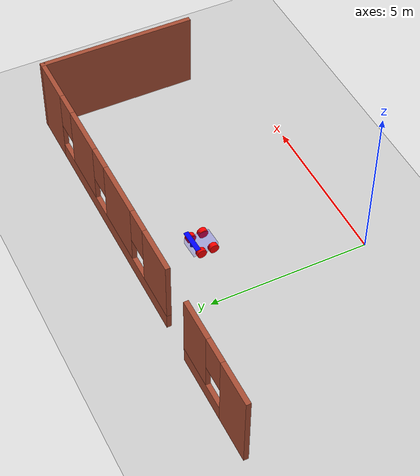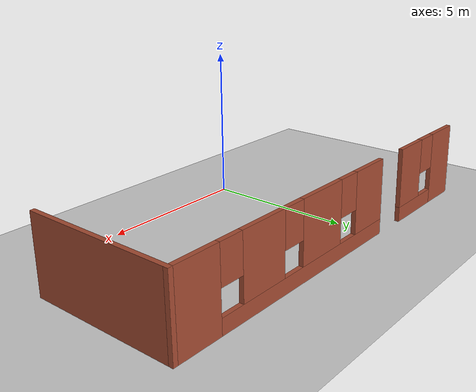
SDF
<sdf version="1.6">
 <world name="default">
  <model name="ground_plane">
   <static>1</static>
   <link name="link">
    <collision name="collision">
     <geometry><plane><normal>0 0 1</normal><size>100 100</size></plane></geometry>
     <surface>
      <contact><collide_bitmask>65535</collide_bitmask></contact>
      <friction><ode><mu>100</mu><mu2>50</mu2></ode></friction>
     </surface>
    </collision>
    <visual name="visual">
     <cast_shadows>0</cast_shadows>
     <geometry><plane><normal>0 0 1</normal><size>100 100</size></plane></geometry>
     <material>
      <script><uri>file://media/materials/scripts/gazebo.material</uri><name>Gazebo/Grey</name></script>
     </material>
    </visual>
   </link>
  </model>
  <model name="apartment">
   <link name="Wall_15">
    <pose>8.56082 4.33059 0 0 -0 1.5708</pose>
    <visual name="Wall_15_Visual">
     <pose>0 0 1.25 0 -0 0</pose>
     <geometry><box><size>5 0.15 2.5</size></box></geometry>
     <material>
      <script><uri>file://media/materials/scripts/gazebo.material</uri><name>Gazebo/Bricks</name></script>
      <ambient>1 1 1 1</ambient>
     </material>
     <meta><layer>0</layer></meta>
    </visual>
    <collision name="Wall_15_Collision">
     <pose>0 0 1.25 0 -0 0</pose>
     <geometry><box><size>5 0.15 2.5</size></box></geometry>
     <surface>
      <friction>
       <ode><mu>1</mu><mu2>1</mu2><fdir1>0 0 0</fdir1><slip1>0</slip1><slip2>0</slip2></ode>
       <torsional>
        <coefficient>1</coefficient>
        <patch_radius>0</patch_radius>
        <surface_radius>0</surface_radius>
        <use_patch_radius>1</use_patch_radius>
        <ode><slip>0</slip></ode>
       </torsional>
      </friction>
      <bounce><restitution_coefficient>0</restitution_coefficient><threshold>1e+06</threshold></bounce>
      <contact>
       <collide_without_contact>0</collide_without_contact>
       <collide_without_contact_bitmask>1</collide_without_contact_bitmask>
       <collide_bitmask>1</collide_bitmask>
       <ode>
        <soft_cfm>0</soft_cfm>
        <soft_erp>0.2</soft_erp>
        <kp>1e+13</kp>
        <kd>1</kd>
        <max_vel>0.01</max_vel>
        <min_depth>0</min_depth>
       </ode>
       <bullet>
        <split_impulse>1</split_impulse>
        <split_impulse_penetration_threshold>-0.01</split_impulse_penetration_threshold>
        <soft_cfm>0</soft_cfm>
        <soft_erp>0.2</soft_erp>
        <kp>1e+13</kp>
        <kd>1</kd>
       </bullet>
      </contact>
     </surface>
    </collision>
   </link>
   <link name="Wall_16">
    <pose>4.13582 6.75558 0 0 -0 3.14159</pose>
    <visual name="Wall_16_Visual_1">
     <pose>0.807869 0 0.25 0 -0 0</pose>
     <geometry><box><size>7.38426 0.15 0.5</size></box></geometry>
     <material>
      <script><uri>file://media/materials/scripts/gazebo.material</uri><name>Gazebo/Bricks</name></script>
      <ambient>1 1 1 1</ambient>
     </material>
     <meta><layer>0</layer></meta>
    </visual>
    <visual name="Wall_16_Visual_0">
     <pose>-3.69213 0 1.25 0 -0 0</pose>
     <geometry><box><size>1.61574 0.15 2.5</size></box></geometry>
     <material>
      <script><uri>file://media/materials/scripts/gazebo.material</uri><name>Gazebo/Bricks</name></script>
      <ambient>1 1 1 1</ambient>
     </material>
     <meta><layer>0</layer></meta>
    </visual>
    <visual name="Wall_16_Visual_2">
     <pose>-1.25235 0 1.5 0 -0 0</pose>
     <geometry><box><size>1.66382 0.15 2</size></box></geometry>
     <material>
      <script><uri>file://media/materials/scripts/gazebo.material</uri><name>Gazebo/Bricks</name></script>
      <ambient>1 1 1 1</ambient>
     </material>
     <meta><layer>0</layer></meta>
    </visual>
    <visual name="Wall_16_Visual_3">
     <pose>1.29511 0 1.5 0 -0 0</pose>
     <geometry><box><size>1.83111 0.15 2</size></box></geometry>
     <material>
      <script><uri>file://media/materials/scripts/gazebo.material</uri><name>Gazebo/Bricks</name></script>
      <ambient>1 1 1 1</ambient>
     </material>
     <meta><layer>0</layer></meta>
    </visual>
    <visual name="Wall_16_Visual_4">
     <pose>3.75534 0 1.5 0 -0 0</pose>
     <geometry><box><size>1.48933 0.15 2</size></box></geometry>
     <material>
      <script><uri>file://media/materials/scripts/gazebo.material</uri><name>Gazebo/Bricks</name></script>
      <ambient>1 1 1 1</ambient>
     </material>
     <meta><layer>0</layer></meta>
    </visual>
    <visual name="Wall_16_Visual_5">
     <pose>-2.48426 0 1.9 0 -0 0</pose>
     <geometry><box><size>0.8 0.15 1.2</size></box></geometry>
     <material>
      <script><uri>file://media/materials/scripts/gazebo.material</uri><name>Gazebo/Bricks</name></script>
      <ambient>1 1 1 1</ambient>
     </material>
     <meta><layer>0</layer></meta>
    </visual>
    <visual name="Wall_16_Visual_6">
     <pose>-0.020444 0 1.9 0 -0 0</pose>
     <geometry><box><size>0.8 0.15 1.2</size></box></geometry>
     <material>
      <script><uri>file://media/materials/scripts/gazebo.material</uri><name>Gazebo/Bricks</name></script>
      <ambient>1 1 1 1</ambient>
     </material>
     <meta><layer>0</layer></meta>
    </visual>
    <visual name="Wall_16_Visual_7">
     <pose>2.61067 0 1.9 0 -0 0</pose>
     <geometry><box><size>0.8 0.15 1.2</size></box></geometry>
     <material>
      <script><uri>file://media/materials/scripts/gazebo.material</uri><name>Gazebo/Bricks</name></script>
      <ambient>1 1 1 1</ambient>
     </material>
     <meta><layer>0</layer></meta>
    </visual>
    <collision name="Wall_16_Collision_0">
     <pose>-3.69213 0 1.25 0 -0 0</pose>
     <geometry><box><size>1.61574 0.15 2.5</size></box></geometry>
     <surface>
      <friction>
       <ode><mu>1</mu><mu2>1</mu2><fdir1>0 0 0</fdir1><slip1>0</slip1><slip2>0</slip2></ode>
       <torsional>
        <coefficient>1</coefficient>
        <patch_radius>0</patch_radius>
        <surface_radius>0</surface_radius>
        <use_patch_radius>1</use_patch_radius>
        <ode><slip>0</slip></ode>
       </torsional>
      </friction>
      <bounce><restitution_coefficient>0</restitution_coefficient><threshold>1e+06</threshold></bounce>
      <contact>
       <collide_without_contact>0</collide_without_contact>
       <collide_without_contact_bitmask>1</collide_without_contact_bitmask>
       <collide_bitmask>1</collide_bitmask>
       <ode>
        <soft_cfm>0</soft_cfm>
        <soft_erp>0.2</soft_erp>
        <kp>1e+13</kp>
        <kd>1</kd>
        <max_vel>0.01</max_vel>
        <min_depth>0</min_depth>
       </ode>
       <bullet>
        <split_impulse>1</split_impulse>
        <split_impulse_penetration_threshold>-0.01</split_impulse_penetration_threshold>
        <soft_cfm>0</soft_cfm>
        <soft_erp>0.2</soft_erp>
        <kp>1e+13</kp>
        <kd>1</kd>
       </bullet>
      </contact>
     </surface>
    </collision>
    <collision name="Wall_16_Collision_1">
     <pose>0.807869 0 0.25 0 -0 0</pose>
     <geometry><box><size>7.38426 0.15 0.5</size></box></geometry>
     <surface>
      <friction>
       <ode><mu>1</mu><mu2>1</mu2><fdir1>0 0 0</fdir1><slip1>0</slip1><slip2>0</slip2></ode>
       <torsional>
        <coefficient>1</coefficient>
        <patch_radius>0</patch_radius>
        <surface_radius>0</surface_radius>
        <use_patch_radius>1</use_patch_radius>
        <ode><slip>0</slip></ode>
       </torsional>
      </friction>
      <bounce><restitution_coefficient>0</restitution_coefficient><threshold>1e+06</threshold></bounce>
      <contact>
       <collide_without_contact>0</collide_without_contact>
       <collide_without_contact_bitmask>1</collide_without_contact_bitmask>
       <collide_bitmask>1</collide_bitmask>
       <ode>
        <soft_cfm>0</soft_cfm>
        <soft_erp>0.2</soft_erp>
        <kp>1e+13</kp>
        <kd>1</kd>
        <max_vel>0.01</max_vel>
        <min_depth>0</min_depth>
       </ode>
       <bullet>
        <split_impulse>1</split_impulse>
        <split_impulse_penetration_threshold>-0.01</split_impulse_penetration_threshold>
        <soft_cfm>0</soft_cfm>
        <soft_erp>0.2</soft_erp>
        <kp>1e+13</kp>
        <kd>1</kd>
       </bullet>
      </contact>
     </surface>
    </collision>
    <collision name="Wall_16_Collision_2">
     <pose>-1.25235 0 1.5 0 -0 0</pose>
     <geometry><box><size>1.66382 0.15 2</size></box></geometry>
     <surface>
      <friction>
       <ode><mu>1</mu><mu2>1</mu2><fdir1>0 0 0</fdir1><slip1>0</slip1><slip2>0</slip2></ode>
       <torsional>
        <coefficient>1</coefficient>
        <patch_radius>0</patch_radius>
        <surface_radius>0</surface_radius>
        <use_patch_radius>1</use_patch_radius>
        <ode><slip>0</slip></ode>
       </torsional>
      </friction>
      <bounce><restitution_coefficient>0</restitution_coefficient><threshold>1e+06</threshold></bounce>
      <contact>
       <collide_without_contact>0</collide_without_contact>
       <collide_without_contact_bitmask>1</collide_without_contact_bitmask>
       <collide_bitmask>1</collide_bitmask>
       <ode>
        <soft_cfm>0</soft_cfm>
        <soft_erp>0.2</soft_erp>
        <kp>1e+13</kp>
        <kd>1</kd>
        <max_vel>0.01</max_vel>
        <min_depth>0</min_depth>
       </ode>
       <bullet>
        <split_impulse>1</split_impulse>
        <split_impulse_penetration_threshold>-0.01</split_impulse_penetration_threshold>
        <soft_cfm>0</soft_cfm>
        <soft_erp>0.2</soft_erp>
        <kp>1e+13</kp>
        <kd>1</kd>
       </bullet>
      </contact>
     </surface>
    </collision>
    <collision name="Wall_16_Collision_3">
     <pose>1.29511 0 1.5 0 -0 0</pose>
     <geometry><box><size>1.83111 0.15 2</size></box></geometry>
     <surface>
      <friction>
       <ode><mu>1</mu><mu2>1</mu2><fdir1>0 0 0</fdir1><slip1>0</slip1><slip2>0</slip2></ode>
       <torsional>
        <coefficient>1</coefficient>
        <patch_radius>0</patch_radius>
        <surface_radius>0</surface_radius>
        <use_patch_radius>1</use_patch_radius>
        <ode><slip>0</slip></ode>
       </torsional>
      </friction>
      <bounce><restitution_coefficient>0</restitution_coefficient><threshold>1e+06</threshold></bounce>
      <contact>
       <collide_without_contact>0</collide_without_contact>
       <collide_without_contact_bitmask>1</collide_without_contact_bitmask>
       <collide_bitmask>1</collide_bitmask>
       <ode>
        <soft_cfm>0</soft_cfm>
        <soft_erp>0.2</soft_erp>
        <kp>1e+13</kp>
        <kd>1</kd>
        <max_vel>0.01</max_vel>
        <min_depth>0</min_depth>
       </ode>
       <bullet>
        <split_impulse>1</split_impulse>
        <split_impulse_penetration_threshold>-0.01</split_impulse_penetration_threshold>
        <soft_cfm>0</soft_cfm>
        <soft_erp>0.2</soft_erp>
        <kp>1e+13</kp>
        <kd>1</kd>
       </bullet>
      </contact>
     </surface>
    </collision>
    <collision name="Wall_16_Collision_4">
     <pose>3.75534 0 1.5 0 -0 0</pose>
     <geometry><box><size>1.48933 0.15 2</size></box></geometry>
     <surface>
      <friction>
       <ode><mu>1</mu><mu2>1</mu2><fdir1>0 0 0</fdir1><slip1>0</slip1><slip2>0</slip2></ode>
       <torsional>
        <coefficient>1</coefficient>
        <patch_radius>0</patch_radius>
        <surface_radius>0</surface_radius>
        <use_patch_radius>1</use_patch_radius>
        <ode><slip>0</slip></ode>
       </torsional>
      </friction>
      <bounce><restitution_coefficient>0</restitution_coefficient><threshold>1e+06</threshold></bounce>
      <contact>
       <collide_without_contact>0</collide_without_contact>
       <collide_without_contact_bitmask>1</collide_without_contact_bitmask>
       <collide_bitmask>1</collide_bitmask>
       <ode>
        <soft_cfm>0</soft_cfm>
        <soft_erp>0.2</soft_erp>
        <kp>1e+13</kp>
        <kd>1</kd>
        <max_vel>0.01</max_vel>
        <min_depth>0</min_depth>
       </ode>
       <bullet>
        <split_impulse>1</split_impulse>
        <split_impulse_penetration_threshold>-0.01</split_impulse_penetration_threshold>
        <soft_cfm>0</soft_cfm>
        <soft_erp>0.2</soft_erp>
        <kp>1e+13</kp>
        <kd>1</kd>
       </bullet>
      </contact>
     </surface>
    </collision>
    <collision name="Wall_16_Collision_5">
     <pose>-2.48426 0 1.9 0 -0 0</pose>
     <geometry><box><size>0.8 0.15 1.2</size></box></geometry>
     <surface>
      <friction>
       <ode><mu>1</mu><mu2>1</mu2><fdir1>0 0 0</fdir1><slip1>0</slip1><slip2>0</slip2></ode>
       <torsional>
        <coefficient>1</coefficient>
        <patch_radius>0</patch_radius>
        <surface_radius>0</surface_radius>
        <use_patch_radius>1</use_patch_radius>
        <ode><slip>0</slip></ode>
       </torsional>
      </friction>
      <bounce><restitution_coefficient>0</restitution_coefficient><threshold>1e+06</threshold></bounce>
      <contact>
       <collide_without_contact>0</collide_without_contact>
       <collide_without_contact_bitmask>1</collide_without_contact_bitmask>
       <collide_bitmask>1</collide_bitmask>
       <ode>
        <soft_cfm>0</soft_cfm>
        <soft_erp>0.2</soft_erp>
        <kp>1e+13</kp>
        <kd>1</kd>
        <max_vel>0.01</max_vel>
        <min_depth>0</min_depth>
       </ode>
       <bullet>
        <split_impulse>1</split_impulse>
        <split_impulse_penetration_threshold>-0.01</split_impulse_penetration_threshold>
        <soft_cfm>0</soft_cfm>
        <soft_erp>0.2</soft_erp>
        <kp>1e+13</kp>
        <kd>1</kd>
       </bullet>
      </contact>
     </surface>
    </collision>
    <collision name="Wall_16_Collision_6">
     <pose>-0.020444 0 1.9 0 -0 0</pose>
     <geometry><box><size>0.8 0.15 1.2</size></box></geometry>
     <surface>
      <friction>
       <ode><mu>1</mu><mu2>1</mu2><fdir1>0 0 0</fdir1><slip1>0</slip1><slip2>0</slip2></ode>
       <torsional>
        <coefficient>1</coefficient>
        <patch_radius>0</patch_radius>
        <surface_radius>0</surface_radius>
        <use_patch_radius>1</use_patch_radius>
        <ode><slip>0</slip></ode>
       </torsional>
      </friction>
      <bounce><restitution_coefficient>0</restitution_coefficient><threshold>1e+06</threshold></bounce>
      <contact>
       <collide_without_contact>0</collide_without_contact>
       <collide_without_contact_bitmask>1</collide_without_contact_bitmask>
       <collide_bitmask>1</collide_bitmask>
       <ode>
        <soft_cfm>0</soft_cfm>
        <soft_erp>0.2</soft_erp>
        <kp>1e+13</kp>
        <kd>1</kd>
        <max_vel>0.01</max_vel>
        <min_depth>0</min_depth>
       </ode>
       <bullet>
        <split_impulse>1</split_impulse>
        <split_impulse_penetration_threshold>-0.01</split_impulse_penetration_threshold>
        <soft_cfm>0</soft_cfm>
        <soft_erp>0.2</soft_erp>
        <kp>1e+13</kp>
        <kd>1</kd>
       </bullet>
      </contact>
     </surface>
    </collision>
    <collision name="Wall_16_Collision_7">
     <pose>2.61067 0 1.9 0 -0 0</pose>
     <geometry><box><size>0.8 0.15 1.2</size></box></geometry>
     <surface>
      <friction>
       <ode><mu>1</mu><mu2>1</mu2><fdir1>0 0 0</fdir1><slip1>0</slip1><slip2>0</slip2></ode>
       <torsional>
        <coefficient>1</coefficient>
        <patch_radius>0</patch_radius>
        <surface_radius>0</surface_radius>
        <use_patch_radius>1</use_patch_radius>
        <ode><slip>0</slip></ode>
       </torsional>
      </friction>
      <bounce><restitution_coefficient>0</restitution_coefficient><threshold>1e+06</threshold></bounce>
      <contact>
       <collide_without_contact>0</collide_without_contact>
       <collide_without_contact_bitmask>1</collide_without_contact_bitmask>
       <collide_bitmask>1</collide_bitmask>
       <ode>
        <soft_cfm>0</soft_cfm>
        <soft_erp>0.2</soft_erp>
        <kp>1e+13</kp>
        <kd>1</kd>
        <max_vel>0.01</max_vel>
        <min_depth>0</min_depth>
       </ode>
       <bullet>
        <split_impulse>1</split_impulse>
        <split_impulse_penetration_threshold>-0.01</split_impulse_penetration_threshold>
        <soft_cfm>0</soft_cfm>
        <soft_erp>0.2</soft_erp>
        <kp>1e+13</kp>
        <kd>1</kd>
       </bullet>
      </contact>
     </surface>
    </collision>
   </link>
   <link name="Wall_36">
    <pose>-3.28582 6.79441 0 0 -0 0</pose>
    <visual name="Wall_36_Visual_1">
     <pose>0.692709 0 0.25 0 -0 0</pose>
     <geometry><box><size>2.11458 0.15 0.5</size></box></geometry>
     <material>
      <script><uri>file://media/materials/scripts/gazebo.material</uri><name>Gazebo/Bricks</name></script>
      <ambient>1 1 1 1</ambient>
     </material>
     <meta><layer>0</layer></meta>
    </visual>
    <visual name="Wall_36_Visual_0">
     <pose>-1.05729 0 1.25 0 -0 0</pose>
     <geometry><box><size>1.38542 0.15 2.5</size></box></geometry>
     <material>
      <script><uri>file://media/materials/scripts/gazebo.material</uri><name>Gazebo/Bricks</name></script>
      <ambient>1 1 1 1</ambient>
     </material>
     <meta><layer>0</layer></meta>
    </visual>
    <visual name="Wall_36_Visual_2">
     <pose>1.09271 0 1.5 0 -0 0</pose>
     <geometry><box><size>1.31458 0.15 2</size></box></geometry>
     <material>
      <script><uri>file://media/materials/scripts/gazebo.material</uri><name>Gazebo/Bricks</name></script>
      <ambient>1 1 1 1</ambient>
     </material>
     <meta><layer>0</layer></meta>
    </visual>
    <visual name="Wall_36_Visual_3">
     <pose>0.035419 0 1.9 0 -0 0</pose>
     <geometry><box><size>0.8 0.15 1.2</size></box></geometry>
     <material>
      <script><uri>file://media/materials/scripts/gazebo.material</uri><name>Gazebo/Bricks</name></script>
      <ambient>1 1 1 1</ambient>
     </material>
     <meta><layer>0</layer></meta>
    </visual>
    <collision name="Wall_36_Collision_0">
     <pose>-1.05729 0 1.25 0 -0 0</pose>
     <geometry><box><size>1.38542 0.15 2.5</size></box></geometry>
     <surface>
      <friction>
       <ode><mu>1</mu><mu2>1</mu2><fdir1>0 0 0</fdir1><slip1>0</slip1><slip2>0</slip2></ode>
       <torsional>
        <coefficient>1</coefficient>
        <patch_radius>0</patch_radius>
        <surface_radius>0</surface_radius>
        <use_patch_radius>1</use_patch_radius>
        <ode><slip>0</slip></ode>
       </torsional>
      </friction>
      <bounce><restitution_coefficient>0</restitution_coefficient><threshold>1e+06</threshold></bounce>
      <contact>
       <collide_without_contact>0</collide_without_contact>
       <collide_without_contact_bitmask>1</collide_without_contact_bitmask>
       <collide_bitmask>1</collide_bitmask>
       <ode>
        <soft_cfm>0</soft_cfm>
        <soft_erp>0.2</soft_erp>
        <kp>1e+13</kp>
        <kd>1</kd>
        <max_vel>0.01</max_vel>
        <min_depth>0</min_depth>
       </ode>
       <bullet>
        <split_impulse>1</split_impulse>
        <split_impulse_penetration_threshold>-0.01</split_impulse_penetration_threshold>
        <soft_cfm>0</soft_cfm>
        <soft_erp>0.2</soft_erp>
        <kp>1e+13</kp>
        <kd>1</kd>
       </bullet>
      </contact>
     </surface>
    </collision>
    <collision name="Wall_36_Collision_1">
     <pose>0.692709 0 0.25 0 -0 0</pose>
     <geometry><box><size>2.11458 0.15 0.5</size></box></geometry>
     <surface>
      <friction>
       <ode><mu>1</mu><mu2>1</mu2><fdir1>0 0 0</fdir1><slip1>0</slip1><slip2>0</slip2></ode>
       <torsional>
        <coefficient>1</coefficient>
        <patch_radius>0</patch_radius>
        <surface_radius>0</surface_radius>
        <use_patch_radius>1</use_patch_radius>
        <ode><slip>0</slip></ode>
       </torsional>
      </friction>
      <bounce><restitution_coefficient>0</restitution_coefficient><threshold>1e+06</threshold></bounce>
      <contact>
       <collide_without_contact>0</collide_without_contact>
       <collide_without_contact_bitmask>1</collide_without_contact_bitmask>
       <collide_bitmask>1</collide_bitmask>
       <ode>
        <soft_cfm>0</soft_cfm>
        <soft_erp>0.2</soft_erp>
        <kp>1e+13</kp>
        <kd>1</kd>
        <max_vel>0.01</max_vel>
        <min_depth>0</min_depth>
       </ode>
       <bullet>
        <split_impulse>1</split_impulse>
        <split_impulse_penetration_threshold>-0.01</split_impulse_penetration_threshold>
        <soft_cfm>0</soft_cfm>
        <soft_erp>0.2</soft_erp>
        <kp>1e+13</kp>
        <kd>1</kd>
       </bullet>
      </contact>
     </surface>
    </collision>
    <collision name="Wall_36_Collision_2">
     <pose>1.09271 0 1.5 0 -0 0</pose>
     <geometry><box><size>1.31458 0.15 2</size></box></geometry>
     <surface>
      <friction>
       <ode><mu>1</mu><mu2>1</mu2><fdir1>0 0 0</fdir1><slip1>0</slip1><slip2>0</slip2></ode>
       <torsional>
        <coefficient>1</coefficient>
        <patch_radius>0</patch_radius>
        <surface_radius>0</surface_radius>
        <use_patch_radius>1</use_patch_radius>
        <ode><slip>0</slip></ode>
       </torsional>
      </friction>
      <bounce><restitution_coefficient>0</restitution_coefficient><threshold>1e+06</threshold></bounce>
      <contact>
       <collide_without_contact>0</collide_without_contact>
       <collide_without_contact_bitmask>1</collide_without_contact_bitmask>
       <collide_bitmask>1</collide_bitmask>
       <ode>
        <soft_cfm>0</soft_cfm>
        <soft_erp>0.2</soft_erp>
        <kp>1e+13</kp>
        <kd>1</kd>
        <max_vel>0.01</max_vel>
        <min_depth>0</min_depth>
       </ode>
       <bullet>
        <split_impulse>1</split_impulse>
        <split_impulse_penetration_threshold>-0.01</split_impulse_penetration_threshold>
        <soft_cfm>0</soft_cfm>
        <soft_erp>0.2</soft_erp>
        <kp>1e+13</kp>
        <kd>1</kd>
       </bullet>
      </contact>
     </surface>
    </collision>
    <collision name="Wall_36_Collision_3">
     <pose>0.035419 0 1.9 0 -0 0</pose>
     <geometry><box><size>0.8 0.15 1.2</size></box></geometry>
     <surface>
      <friction>
       <ode><mu>1</mu><mu2>1</mu2><fdir1>0 0 0</fdir1><slip1>0</slip1><slip2>0</slip2></ode>
       <torsional>
        <coefficient>1</coefficient>
        <patch_radius>0</patch_radius>
        <surface_radius>0</surface_radius>
        <use_patch_radius>1</use_patch_radius>
        <ode><slip>0</slip></ode>
       </torsional>
      </friction>
      <bounce><restitution_coefficient>0</restitution_coefficient><threshold>1e+06</threshold></bounce>
      <contact>
       <collide_without_contact>0</collide_without_contact>
       <collide_without_contact_bitmask>1</collide_without_contact_bitmask>
       <collide_bitmask>1</collide_bitmask>
       <ode>
        <soft_cfm>0</soft_cfm>
        <soft_erp>0.2</soft_erp>
        <kp>1e+13</kp>
        <kd>1</kd>
        <max_vel>0.01</max_vel>
        <min_depth>0</min_depth>
       </ode>
       <bullet>
        <split_impulse>1</split_impulse>
        <split_impulse_penetration_threshold>-0.01</split_impulse_penetration_threshold>
        <soft_cfm>0</soft_cfm>
        <soft_erp>0.2</soft_erp>
        <kp>1e+13</kp>
        <kd>1</kd>
       </bullet>
      </contact>
     </surface>
    </collision>
   </link>
   <static>1</static>
   <pose>0.16206 -0.380109 0 0 -0 0</pose>
  </model>
  <model name="bot">
   <link name="link_0">
    <inertial>
     <mass>1</mass>
     <inertia>
      <ixx>0.0333333</ixx>
      <ixy>0</ixy>
      <ixz>0</ixz>
      <iyy>0.0566667</iyy>
      <iyz>0</iyz>
      <izz>0.0833333</izz>
     </inertia>
    </inertial>
    <pose>-0.024426 -0.001593 0 0 -0 0</pose>
    <visual name="visual">
     <geometry><box><size>0.8 0.6 0.2</size></box></geometry>
     <material>
      <lighting>1</lighting>
      <script><uri>file://media/materials/scripts/gazebo.material</uri><name>Gazebo/Grey</name></script>
      <shader type="vertex"><normal_map>__default__</normal_map></shader>
      <ambient>0 0 1 0.2</ambient>
      <diffuse>0.7 0.7 0.7 1</diffuse>
      <specular>0.01 0.01 0.01 1</specular>
      <emissive>0 0 0 1</emissive>
     </material>
    </visual>
    <collision name="collision">
     <geometry><box><size>0.8 0.6 0.2</size></box></geometry>
     <surface>
      <friction>
       <ode><mu>1</mu><mu2>1</mu2><fdir1>0 0 0</fdir1><slip1>0</slip1><slip2>0</slip2></ode>
       <torsional>
        <coefficient>1</coefficient>
        <patch_radius>0</patch_radius>
        <surface_radius>0</surface_radius>
        <use_patch_radius>1</use_patch_radius>
        <ode><slip>0</slip></ode>
       </torsional>
      </friction>
      <bounce><restitution_coefficient>0</restitution_coefficient><threshold>1e+06</threshold></bounce>
      <contact>
       <collide_without_contact>0</collide_without_contact>
       <collide_without_contact_bitmask>1</collide_without_contact_bitmask>
       <collide_bitmask>1</collide_bitmask>
       <ode>
        <soft_cfm>0</soft_cfm>
        <soft_erp>0.2</soft_erp>
        <kp>1e+13</kp>
        <kd>1</kd>
        <max_vel>0.01</max_vel>
        <min_depth>0</min_depth>
       </ode>
       <bullet>
        <split_impulse>1</split_impulse>
        <split_impulse_penetration_threshold>-0.01</split_impulse_penetration_threshold>
        <soft_cfm>0</soft_cfm>
        <soft_erp>0.2</soft_erp>
        <kp>1e+13</kp>
        <kd>1</kd>
       </bullet>
      </contact>
     </surface>
    </collision>
   </link>
   <link name="link_0_0">
    <inertial>
     <mass>0.00155561</mass>
     <inertia>
      <ixx>3.56e-06</ixx>
      <ixy>0</ixy>
      <ixz>0</ixz>
      <iyy>3.56e-06</iyy>
      <iyz>0</iyz>
      <izz>2.19e-06</izz>
     </inertia>
    </inertial>
    <pose>-0.346889 -0.043439 0.16 -0 -1e-06 -1.1e-05</pose>
    <visual name="visual">
     <geometry><cylinder><radius>0.053114</radius><length>0.14</length></cylinder></geometry>
     <material>
      <lighting>1</lighting>
      <script><uri>file://media/materials/scripts/gazebo.material</uri><name>Gazebo/Grey</name></script>
      <emissive>0 0 0 1</emissive>
      <shader type="vertex"><normal_map>__default__</normal_map></shader>
      <ambient>0 0 1 1</ambient>
      <diffuse>0.7 0.7 0.7 1</diffuse>
      <specular>0.01 0.01 0.01 1</specular>
     </material>
    </visual>
    <collision name="collision">
     <geometry><cylinder><radius>0.053114</radius><length>0.137696</length></cylinder></geometry>
     <surface>
      <friction>
       <ode><mu>1</mu><mu2>1</mu2><fdir1>0 0 0</fdir1><slip1>0</slip1><slip2>0</slip2></ode>
       <torsional>
        <coefficient>1</coefficient>
        <patch_radius>0</patch_radius>
        <surface_radius>0</surface_radius>
        <use_patch_radius>1</use_patch_radius>
        <ode><slip>0</slip></ode>
       </torsional>
      </friction>
      <bounce><restitution_coefficient>0</restitution_coefficient><threshold>1e+06</threshold></bounce>
      <contact>
       <collide_without_contact>0</collide_without_contact>
       <collide_without_contact_bitmask>1</collide_without_contact_bitmask>
       <collide_bitmask>1</collide_bitmask>
       <ode>
        <soft_cfm>0</soft_cfm>
        <soft_erp>0.2</soft_erp>
        <kp>1e+13</kp>
        <kd>1</kd>
        <max_vel>0.01</max_vel>
        <min_depth>0</min_depth>
       </ode>
       <bullet>
        <split_impulse>1</split_impulse>
        <split_impulse_penetration_threshold>-0.01</split_impulse_penetration_threshold>
        <soft_cfm>0</soft_cfm>
        <soft_erp>0.2</soft_erp>
        <kp>1e+13</kp>
        <kd>1</kd>
       </bullet>
      </contact>
     </surface>
    </collision>
   </link>
   <link name="link_1">
    <inertial>
     <mass>1</mass>
     <inertia><ixx>0.0075</ixx><ixy>0</ixy><ixz>0</ixz><iyy>0.0075</iyy><iyz>0</iyz><izz>0.01125</izz></inertia>
    </inertial>
    <pose>0.2 0.324981 -0 1.5707 -0 0</pose>
    <visual name="visual">
     <geometry><cylinder><radius>0.15</radius><length>0.15</length></cylinder></geometry>
     <material>
      <lighting>1</lighting>
      <script><uri>file://media/materials/scripts/gazebo.material</uri><name>Gazebo/Grey</name></script>
      <shader type="vertex"><normal_map>__default__</normal_map></shader>
      <ambient>1 0 0 0</ambient>
      <diffuse>0.7 0.7 0.7 0</diffuse>
      <specular>0.01 0.01 0.01 1</specular>
      <emissive>0 0 0 1</emissive>
     </material>
    </visual>
    <collision name="collision">
     <geometry><cylinder><radius>0.15</radius><length>0.15</length></cylinder></geometry>
     <surface>
      <friction>
       <ode><mu>1</mu><mu2>1</mu2><fdir1>0 0 0</fdir1><slip1>0</slip1><slip2>0</slip2></ode>
       <torsional>
        <coefficient>1</coefficient>
        <patch_radius>0</patch_radius>
        <surface_radius>0</surface_radius>
        <use_patch_radius>1</use_patch_radius>
        <ode><slip>0</slip></ode>
       </torsional>
      </friction>
      <bounce><restitution_coefficient>0</restitution_coefficient><threshold>1e+06</threshold></bounce>
      <contact>
       <collide_without_contact>0</collide_without_contact>
       <collide_without_contact_bitmask>1</collide_without_contact_bitmask>
       <collide_bitmask>1</collide_bitmask>
       <ode>
        <soft_cfm>0</soft_cfm>
        <soft_erp>0.2</soft_erp>
        <kp>1e+13</kp>
        <kd>1</kd>
        <max_vel>0.01</max_vel>
        <min_depth>0</min_depth>
       </ode>
       <bullet>
        <split_impulse>1</split_impulse>
        <split_impulse_penetration_threshold>-0.01</split_impulse_penetration_threshold>
        <soft_cfm>0</soft_cfm>
        <soft_erp>0.2</soft_erp>
        <kp>1e+13</kp>
        <kd>1</kd>
       </bullet>
      </contact>
     </surface>
    </collision>
   </link>
   <link name="link_1_0">
    <inertial>
     <mass>0.00101746</mass>
     <inertia>
      <ixx>5.04e-05</ixx>
      <ixy>0</ixy>
      <ixz>0</ixz>
      <iyy>2.13e-06</iyy>
      <iyz>0</iyz>
      <izz>5.252e-05</izz>
     </inertia>
    </inertial>
    <pose>-0.32 -0 0.23 -0 -1e-06 -1.1e-05</pose>
    <visual name="visual">
     <geometry><box><size>0.158205 0.770955 0.008351</size></box></geometry>
     <material>
      <lighting>1</lighting>
      <script><uri>file://media/materials/scripts/gazebo.material</uri><name>Gazebo/Grey</name></script>
      <ambient>0 0 1 0</ambient>
      <shader type="vertex"><normal_map>__default__</normal_map></shader>
      <diffuse>0.7 0.7 0.7 1</diffuse>
      <specular>0.01 0.01 0.01 1</specular>
      <emissive>0 0 0 1</emissive>
     </material>
    </visual>
    <collision name="collision">
     <geometry><box><size>0.158205 0.770955 0.008351</size></box></geometry>
     <surface>
      <friction>
       <ode><mu>1</mu><mu2>1</mu2><fdir1>0 0 0</fdir1><slip1>0</slip1><slip2>0</slip2></ode>
       <torsional>
        <coefficient>1</coefficient>
        <patch_radius>0</patch_radius>
        <surface_radius>0</surface_radius>
        <use_patch_radius>1</use_patch_radius>
        <ode><slip>0</slip></ode>
       </torsional>
      </friction>
      <bounce><restitution_coefficient>0</restitution_coefficient><threshold>1e+06</threshold></bounce>
      <contact>
       <collide_without_contact>0</collide_without_contact>
       <collide_without_contact_bitmask>1</collide_without_contact_bitmask>
       <collide_bitmask>1</collide_bitmask>
       <ode>
        <soft_cfm>0</soft_cfm>
        <soft_erp>0.2</soft_erp>
        <kp>1e+13</kp>
        <kd>1</kd>
        <max_vel>0.01</max_vel>
        <min_depth>0</min_depth>
       </ode>
       <bullet>
        <split_impulse>1</split_impulse>
        <split_impulse_penetration_threshold>-0.01</split_impulse_penetration_threshold>
        <soft_cfm>0</soft_cfm>
        <soft_erp>0.2</soft_erp>
        <kp>1e+13</kp>
        <kd>1</kd>
       </bullet>
      </contact>
     </surface>
    </collision>
   </link>
   <link name="link_1_clone">
    <inertial>
     <mass>1</mass>
     <inertia><ixx>0.145833</ixx><ixy>0</ixy><ixz>0</ixz><iyy>0.145833</iyy><iyz>0</iyz><izz>0.125</izz></inertia>
    </inertial>
    <pose>-0.2 0.324981 -0 1.5707 -0 0</pose>
    <visual name="visual">
     <geometry><cylinder><radius>0.15</radius><length>0.15</length></cylinder></geometry>
     <material>
      <lighting>1</lighting>
      <script><uri>file://media/materials/scripts/gazebo.material</uri><name>Gazebo/Grey</name></script>
      <shader type="vertex"><normal_map>__default__</normal_map></shader>
      <ambient>1 0 0 0</ambient>
      <diffuse>0.7 0.7 0.7 0</diffuse>
      <specular>0.01 0.01 0.01 1</specular>
      <emissive>0 0 0 1</emissive>
     </material>
    </visual>
    <collision name="collision">
     <geometry><cylinder><radius>0.15</radius><length>0.15</length></cylinder></geometry>
     <surface>
      <friction>
       <ode><mu>1</mu><mu2>1</mu2><fdir1>0 0 0</fdir1><slip1>0</slip1><slip2>0</slip2></ode>
       <torsional>
        <coefficient>1</coefficient>
        <patch_radius>0</patch_radius>
        <surface_radius>0</surface_radius>
        <use_patch_radius>1</use_patch_radius>
        <ode><slip>0</slip></ode>
       </torsional>
      </friction>
      <bounce><restitution_coefficient>0</restitution_coefficient><threshold>1e+06</threshold></bounce>
      <contact>
       <collide_without_contact>0</collide_without_contact>
       <collide_without_contact_bitmask>1</collide_without_contact_bitmask>
       <collide_bitmask>1</collide_bitmask>
       <ode>
        <soft_cfm>0</soft_cfm>
        <soft_erp>0.2</soft_erp>
        <kp>1e+13</kp>
        <kd>1</kd>
        <max_vel>0.01</max_vel>
        <min_depth>0</min_depth>
       </ode>
       <bullet>
        <split_impulse>1</split_impulse>
        <split_impulse_penetration_threshold>-0.01</split_impulse_penetration_threshold>
        <soft_cfm>0</soft_cfm>
        <soft_erp>0.2</soft_erp>
        <kp>1e+13</kp>
        <kd>1</kd>
       </bullet>
      </contact>
     </surface>
    </collision>
   </link>
   <link name="link_1_clone_0">
    <inertial>
     <mass>1</mass>
     <inertia><ixx>0.145833</ixx><ixy>0</ixy><ixz>0</ixz><iyy>0.145833</iyy><iyz>0</iyz><izz>0.125</izz></inertia>
    </inertial>
    <pose>-0.2 -0.324981 0 1.5707 -0 0</pose>
    <visual name="visual">
     <geometry><cylinder><radius>0.15</radius><length>0.15</length></cylinder></geometry>
     <material>
      <lighting>1</lighting>
      <script><uri>file://media/materials/scripts/gazebo.material</uri><name>Gazebo/Grey</name></script>
      <shader type="vertex"><normal_map>__default__</normal_map></shader>
      <ambient>1 0 0 0</ambient>
      <diffuse>0.7 0.7 0.7 0</diffuse>
      <specular>0.01 0.01 0.01 1</specular>
      <emissive>0 0 0 1</emissive>
     </material>
    </visual>
    <collision name="collision">
     <geometry><cylinder><radius>0.15</radius><length>0.15</length></cylinder></geometry>
     <surface>
      <friction>
       <ode><mu>1</mu><mu2>1</mu2><fdir1>0 0 0</fdir1><slip1>0</slip1><slip2>0</slip2></ode>
       <torsional>
        <coefficient>1</coefficient>
        <patch_radius>0</patch_radius>
        <surface_radius>0</surface_radius>
        <use_patch_radius>1</use_patch_radius>
        <ode><slip>0</slip></ode>
       </torsional>
      </friction>
      <bounce><restitution_coefficient>0</restitution_coefficient><threshold>1e+06</threshold></bounce>
      <contact>
       <collide_without_contact>0</collide_without_contact>
       <collide_without_contact_bitmask>1</collide_without_contact_bitmask>
       <collide_bitmask>1</collide_bitmask>
       <ode>
        <soft_cfm>0</soft_cfm>
        <soft_erp>0.2</soft_erp>
        <kp>1e+13</kp>
        <kd>1</kd>
        <max_vel>0.01</max_vel>
        <min_depth>0</min_depth>
       </ode>
       <bullet>
        <split_impulse>1</split_impulse>
        <split_impulse_penetration_threshold>-0.01</split_impulse_penetration_threshold>
        <soft_cfm>0</soft_cfm>
        <soft_erp>0.2</soft_erp>
        <kp>1e+13</kp>
        <kd>1</kd>
       </bullet>
      </contact>
     </surface>
    </collision>
   </link>
   <link name="link_1_clone_1">
    <inertial>
     <mass>1</mass>
     <inertia><ixx>0.145833</ixx><ixy>0</ixy><ixz>0</ixz><iyy>0.145833</iyy><iyz>0</iyz><izz>0.125</izz></inertia>
    </inertial>
    <pose>0.2 -0.324981 0 1.5707 -0 0</pose>
    <visual name="visual">
     <geometry><cylinder><radius>0.15</radius><length>0.15</length></cylinder></geometry>
     <material>
      <lighting>1</lighting>
      <script><uri>file://media/materials/scripts/gazebo.material</uri><name>Gazebo/Grey</name></script>
      <shader type="vertex"><normal_map>__default__</normal_map></shader>
      <ambient>1 0 0 0</ambient>
      <diffuse>0.7 0.7 0.7 0</diffuse>
      <specular>0.01 0.01 0.01 1</specular>
      <emissive>0 0 0 1</emissive>
     </material>
    </visual>
    <collision name="collision">
     <geometry><cylinder><radius>0.15</radius><length>0.15</length></cylinder></geometry>
     <surface>
      <friction>
       <ode><mu>1</mu><mu2>1</mu2><fdir1>0 0 0</fdir1><slip1>0</slip1><slip2>0</slip2></ode>
       <torsional>
        <coefficient>1</coefficient>
        <patch_radius>0</patch_radius>
        <surface_radius>0</surface_radius>
        <use_patch_radius>1</use_patch_radius>
        <ode><slip>0</slip></ode>
       </torsional>
      </friction>
      <bounce><restitution_coefficient>0</restitution_coefficient><threshold>1e+06</threshold></bounce>
      <contact>
       <collide_without_contact>0</collide_without_contact>
       <collide_without_contact_bitmask>1</collide_without_contact_bitmask>
       <collide_bitmask>1</collide_bitmask>
       <ode>
        <soft_cfm>0</soft_cfm>
        <soft_erp>0.2</soft_erp>
        <kp>1e+13</kp>
        <kd>1</kd>
        <max_vel>0.01</max_vel>
        <min_depth>0</min_depth>
       </ode>
       <bullet>
        <split_impulse>1</split_impulse>
        <split_impulse_penetration_threshold>-0.01</split_impulse_penetration_threshold>
        <soft_cfm>0</soft_cfm>
        <soft_erp>0.2</soft_erp>
        <kp>1e+13</kp>
        <kd>1</kd>
       </bullet>
      </contact>
     </surface>
    </collision>
   </link>
   <joint name="link_0_0_JOINT_2" type="fixed">
    <parent>link_0_0</parent>
    <child>link_1_0</child>
    <physics>
     <ode><limit><cfm>0</cfm><erp>0.2</erp></limit><suspension><cfm>0</cfm><erp>0.2</erp></suspension></ode>
    </physics>
   </joint>
   <joint name="link_0_JOINT_1_0" type="fixed">
    <parent>link_0</parent>
    <child>link_0_0</child>
    <pose>0 0 0 0 -0.03 0</pose>
    <physics>
     <ode><limit><cfm>0</cfm><erp>0.2</erp></limit><suspension><cfm>0</cfm><erp>0.2</erp></suspension></ode>
    </physics>
   </joint>
   <joint name="link_0_JOINT_1" type="revolute">
    <parent>link_0</parent>
    <child>link_1</child>
    <axis>
     <xyz>1 0 0</xyz>
     <use_parent_model_frame>0</use_parent_model_frame>
     <limit>
      <lower>-1.79769e+308</lower>
      <upper>1.79769e+308</upper>
      <effort>-1</effort>
      <velocity>-1</velocity>
     </limit>
     <dynamics>
      <spring_reference>0</spring_reference>
      <spring_stiffness>0</spring_stiffness>
      <damping>0</damping>
      <friction>0</friction>
     </dynamics>
    </axis>
    <physics>
     <ode><limit><cfm>0</cfm><erp>0.2</erp></limit><suspension><cfm>0</cfm><erp>0.2</erp></suspension></ode>
    </physics>
   </joint>
   <joint name="link_0_JOINT_2" type="revolute">
    <parent>link_0</parent>
    <child>link_1_clone_1</child>
    <axis>
     <xyz>1 0 0</xyz>
     <use_parent_model_frame>0</use_parent_model_frame>
     <limit>
      <lower>-1.79769e+308</lower>
      <upper>1.79769e+308</upper>
      <effort>-1</effort>
      <velocity>-1</velocity>
     </limit>
     <dynamics>
      <spring_reference>0</spring_reference>
      <spring_stiffness>0</spring_stiffness>
      <damping>0</damping>
      <friction>0</friction>
     </dynamics>
    </axis>
    <physics>
     <ode><limit><cfm>0</cfm><erp>0.2</erp></limit><suspension><cfm>0</cfm><erp>0.2</erp></suspension></ode>
    </physics>
   </joint>
   <joint name="link_0_JOINT_3" type="revolute">
    <parent>link_0</parent>
    <child>link_1_clone_0</child>
    <axis>
     <xyz>1 0 0</xyz>
     <use_parent_model_frame>0</use_parent_model_frame>
     <limit>
      <lower>-1.79769e+308</lower>
      <upper>1.79769e+308</upper>
      <effort>-1</effort>
      <velocity>-1</velocity>
     </limit>
     <dynamics>
      <spring_reference>0</spring_reference>
      <spring_stiffness>0</spring_stiffness>
      <damping>0</damping>
      <friction>0</friction>
     </dynamics>
    </axis>
    <physics>
     <ode><limit><cfm>0</cfm><erp>0.2</erp></limit><suspension><cfm>0</cfm><erp>0.2</erp></suspension></ode>
    </physics>
   </joint>
   <joint name="link_0_JOINT_4" type="revolute">
    <parent>link_0</parent>
    <child>link_1_clone</child>
    <axis>
     <xyz>1 0 0</xyz>
     <use_parent_model_frame>0</use_parent_model_frame>
     <limit>
      <lower>-1.79769e+308</lower>
      <upper>1.79769e+308</upper>
      <effort>-1</effort>
      <velocity>-1</velocity>
     </limit>
     <dynamics>
      <spring_reference>0</spring_reference>
      <spring_stiffness>0</spring_stiffness>
      <damping>0</damping>
      <friction>0</friction>
     </dynamics>
    </axis>
    <physics>
     <ode><limit><cfm>0</cfm><erp>0.2</erp></limit><suspension><cfm>0</cfm><erp>0.2</erp></suspension></ode>
    </physics>
   </joint>
   <static>0</static>
   <pose>2.03862 4.28236 0.15 0 -0 -1.52547</pose>
  </model>
 </world>
</sdf>
